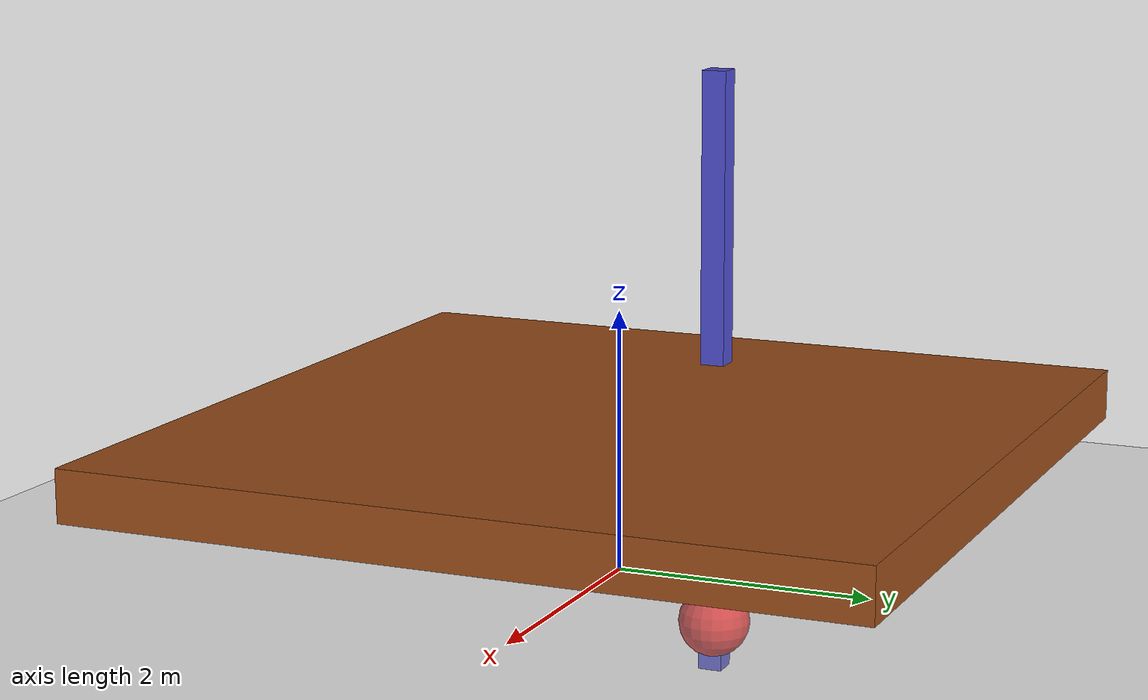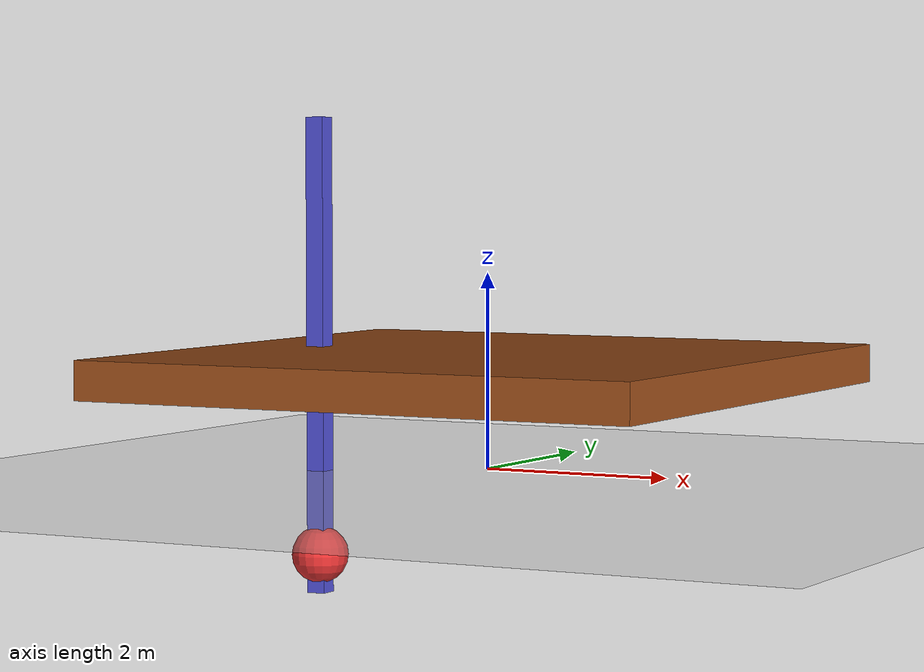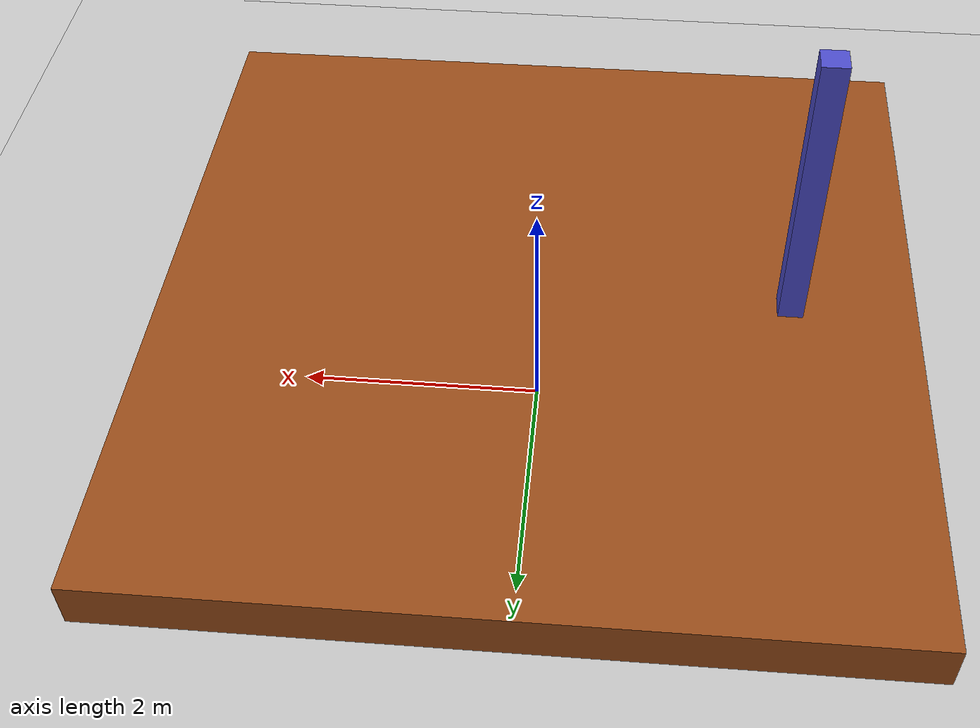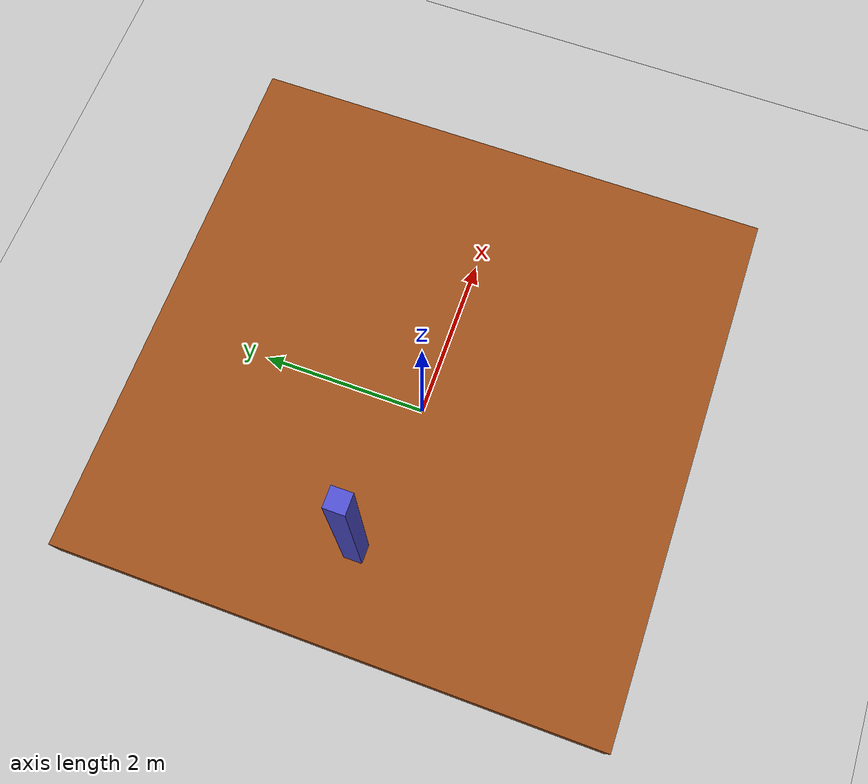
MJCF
<mujoco>
  <option gravity="0 0 -9.81"/>
  <worldbody>
    <body name="table" pos="0 0 1">
      <geom type="box" size="3 3 0.2" rgba="0.6 0.3 0.1 1" friction="0.7 0.7 0.7"/>
    </body>
    <body name="ground" pos="0 0 -0.1">
      <geom type="plane" size="30 30 0.1" rgba="0.8 0.8 0.8 1"/>
    </body>
    <body name="chain" pos="-2 0 1.1">
      <geom type="box" size="0.1 0.1 2.5" density="1" rgba="0.3 0.3 0.8 1"/>
      <joint type="free"/>
    </body>
    <body name="mass" pos="-2 0 -1">
      <geom type="sphere" size="0.3" density="5" rgba="0.9 0.2 0.2 1"/>
    </body>
  </worldbody>
</mujoco>
